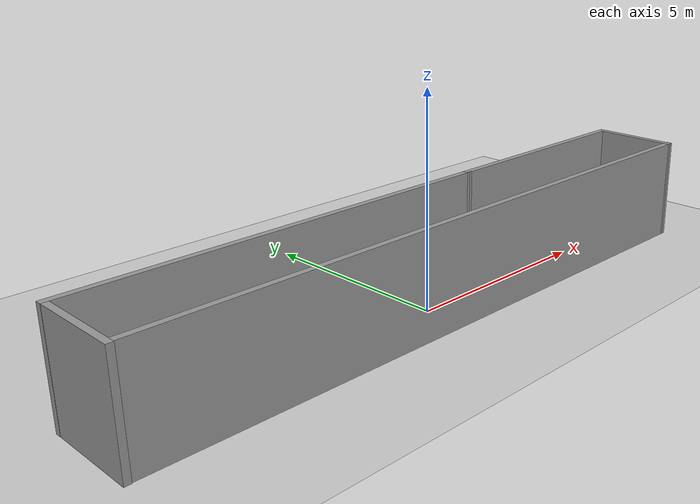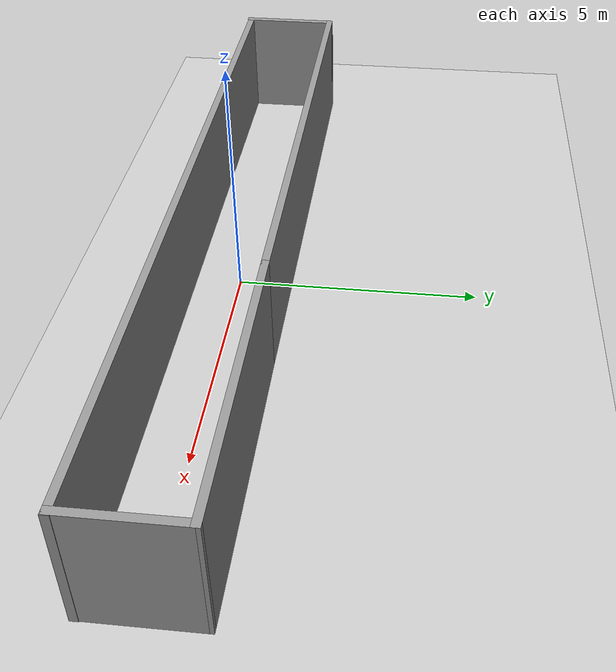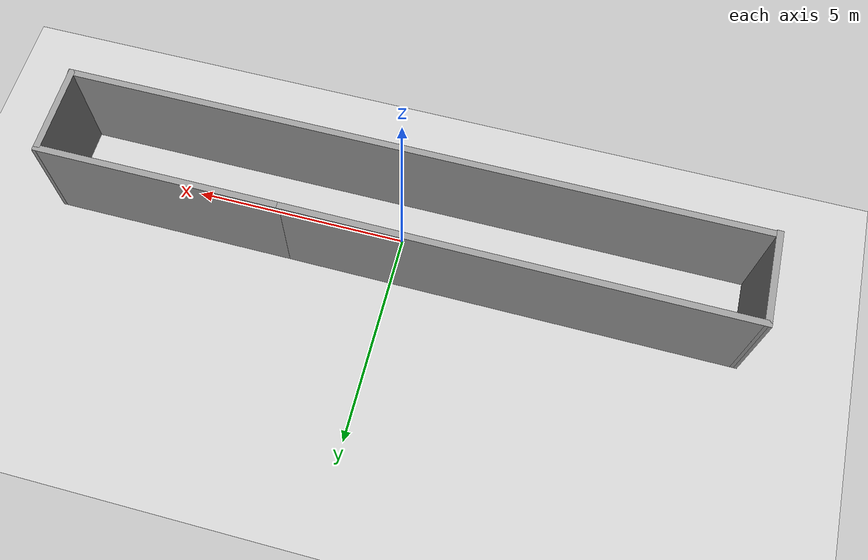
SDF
<sdf version="1.6">
 <world name="default">
  <light name="sun" type="directional">
   <pose>0 0 10 0 -0 0</pose>
   <diffuse>0.8 0.8 0.8 1</diffuse>
   <specular>0.2 0.2 0.2 1</specular>
   <attenuation>
    <range>1000</range>
    <constant>0.9</constant>
    <linear>0.01</linear>
    <quadratic>0.001</quadratic>
   </attenuation>
   <direction>-0.5 0.1 -0.9</direction>
  </light>
  <model name="ground_plane">
   <static>1</static>
   <link name="link">
    <collision name="collision">
     <geometry><plane><normal>0 0 1</normal><size>100 100</size></plane></geometry>
     <surface><friction><ode><mu>100</mu><mu2>50</mu2></ode></friction></surface>
    </collision>
    <visual name="visual">
     <cast_shadows>0</cast_shadows>
     <geometry><plane><normal>0 0 1</normal><size>100 100</size></plane></geometry>
     <material>
      <script><uri>file://media/materials/scripts/gazebo.material</uri><name>Gazebo/Grey</name></script>
     </material>
    </visual>
   </link>
  </model>
  <gravity>0 0 -9.8</gravity>
  <magnetic_field>6e-06 2.3e-05 -4.2e-05</magnetic_field>
  <atmosphere type="adiabatic"/>
  <physics name="default_physics" default="0" type="ode">
   <max_step_size>0.001</max_step_size>
   <real_time_factor>1</real_time_factor>
   <real_time_update_rate>1000</real_time_update_rate>
  </physics>
  <scene><ambient>0.4 0.4 0.4 1</ambient><background>0.7 0.7 0.7 1</background><shadows>1</shadows></scene>
  <spherical_coordinates>
   <surface_model>EARTH_WGS84</surface_model>
   <latitude_deg>0</latitude_deg>
   <longitude_deg>0</longitude_deg>
   <elevation>0</elevation>
   <heading_deg>0</heading_deg>
  </spherical_coordinates>
  <model name="SingleHall">
   <pose>0.036815 0.937593 0 0 -0 0</pose>
   <link name="Wall_0">
    <collision name="Wall_0_Collision">
     <geometry><box><size>2.25 0.15 2.5</size></box></geometry>
     <pose>0 0 1.25 0 -0 0</pose>
    </collision>
    <visual name="Wall_0_Visual">
     <pose>0 0 1.25 0 -0 0</pose>
     <geometry><box><size>2.25 0.15 2.5</size></box></geometry>
     <material>
      <script><uri>file://media/materials/scripts/gazebo.material</uri><name>Gazebo/Grey</name></script>
      <ambient>1 1 1 1</ambient>
     </material>
     <meta><layer>0</layer></meta>
    </visual>
    <pose>-7.9965 -0.932282 0 0 -0 1.5708</pose>
   </link>
   <link name="Wall_1">
    <collision name="Wall_1_Collision">
     <geometry><box><size>10.5392 0.15 2.5</size></box></geometry>
     <pose>0 0 1.25 0 -0 0</pose>
    </collision>
    <visual name="Wall_1_Visual">
     <pose>0 0 1.25 0 -0 0</pose>
     <geometry><box><size>10.5392 0.15 2.5</size></box></geometry>
     <material>
      <script><uri>file://media/materials/scripts/gazebo.material</uri><name>Gazebo/Grey</name></script>
      <ambient>1 1 1 1</ambient>
     </material>
     <meta><layer>0</layer></meta>
    </visual>
    <pose>-2.80628 0.1025 0 0 -0 -0.002929</pose>
   </link>
   <link name="Wall_3">
    <collision name="Wall_3_Collision">
     <geometry><box><size>5.75 0.15 2.5</size></box></geometry>
     <pose>0 0 1.25 0 -0 0</pose>
    </collision>
    <visual name="Wall_3_Visual">
     <pose>0 0 1.25 0 -0 0</pose>
     <geometry><box><size>5.75 0.15 2.5</size></box></geometry>
     <material>
      <script><uri>file://media/materials/scripts/gazebo.material</uri><name>Gazebo/Grey</name></script>
      <ambient>1 1 1 1</ambient>
     </material>
     <meta><layer>0</layer></meta>
    </visual>
    <pose>5.18829 0.087283 0 0 -0 0</pose>
   </link>
   <link name="Wall_4">
    <collision name="Wall_4_Collision">
     <geometry><box><size>2.19976 0.15 2.5</size></box></geometry>
     <pose>0 0 1.25 0 -0 0</pose>
    </collision>
    <visual name="Wall_4_Visual">
     <pose>0 0 1.25 0 -0 0</pose>
     <geometry><box><size>2.19976 0.15 2.5</size></box></geometry>
     <material>
      <script><uri>file://media/materials/scripts/gazebo.material</uri><name>Gazebo/Grey</name></script>
      <ambient>1 1 1 1</ambient>
     </material>
     <meta><layer>0</layer></meta>
    </visual>
    <pose>7.98965 -0.937575 0 0 -0 -1.56947</pose>
   </link>
   <link name="Wall_5">
    <collision name="Wall_5_Collision">
     <geometry><box><size>16 0.15 2.5</size></box></geometry>
     <pose>0 0 1.25 0 -0 0</pose>
    </collision>
    <visual name="Wall_5_Visual">
     <pose>0 0 1.25 0 -0 0</pose>
     <geometry><box><size>16 0.15 2.5</size></box></geometry>
     <material>
      <script><uri>file://media/materials/scripts/gazebo.material</uri><name>Gazebo/Grey</name></script>
      <ambient>1 1 1 1</ambient>
     </material>
     <meta><layer>0</layer></meta>
    </visual>
    <pose>0.076065 -1.96243 0 0 -0 3.14159</pose>
   </link>
   <static>1</static>
  </model>
 </world>
</sdf>
